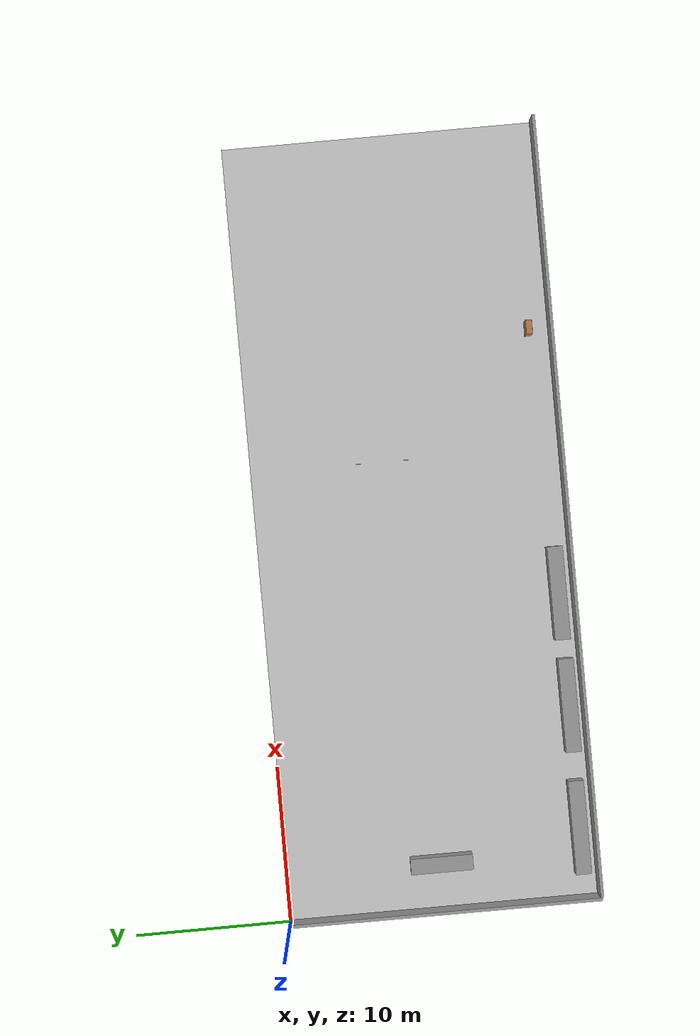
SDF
<sdf version="1.7">
 <world name="default">
  <light name="sun" type="directional">
   <pose>0 0 10 0 -0 0</pose>
   <diffuse>0.8 0.8 0.8 1</diffuse>
   <specular>0.2 0.2 0.2 1</specular>
   <attenuation>
    <range>1000</range>
    <constant>0.9</constant>
    <linear>0.01</linear>
    <quadratic>0.001</quadratic>
   </attenuation>
   <direction>-0.5 0.1 -0.9</direction>
   <spot><inner_angle>0</inner_angle><outer_angle>0</outer_angle><falloff>0</falloff></spot>
  </light>
  <gravity>0 0 -9.8</gravity>
  <magnetic_field>6e-06 2.3e-05 -4.2e-05</magnetic_field>
  <atmosphere type="adiabatic"/>
  <physics type="ode">
   <max_step_size>0.005</max_step_size>
   <real_time_factor>1</real_time_factor>
   <real_time_update_rate>200</real_time_update_rate>
   <ode><solver><type>quick</type><iters>10</iters></solver></ode>
  </physics>
  <scene><ambient>0.4 0.4 0.4 1</ambient><background>0.7 0.7 0.7 1</background><shadows>0</shadows></scene>
  <audio><device>default</device></audio>
  <spherical_coordinates>
   <surface_model>EARTH_WGS84</surface_model>
   <latitude_deg>0</latitude_deg>
   <longitude_deg>0</longitude_deg>
   <elevation>0</elevation>
   <heading_deg>0</heading_deg>
  </spherical_coordinates>
  <model name="my_ground_plane">
   <static>1</static>
   <link name="link">
    <collision name="collision">
     <geometry><plane><normal>0 0 1</normal><size>20 50</size></plane></geometry>
     <surface><friction><ode><mu>100</mu><mu2>50</mu2></ode></friction></surface>
    </collision>
    <visual name="visual">
     <cast_shadows>0</cast_shadows>
     <geometry><plane><normal>0 0 1</normal><size>20 50</size></plane></geometry>
     <material>
      <script>
       <uri>model://my_ground_plane/materials/scripts</uri>
       <uri>model://my_ground_plane/materials/textures/</uri>
       <name>MyGroundPlane/Image</name>
      </script>
     </material>
    </visual>
   </link>
   <pose>25 -10 0 0 -0 1.57</pose>
  </model>
  <model name="grey_wall">
   <static>1</static>
   <link name="link">
    <pose>0 0 1.4 0 -0 0</pose>
    <collision name="collision"><geometry><box><size>20 0.2 1.5</size></box></geometry></collision>
    <visual name="visual">
     <cast_shadows>0</cast_shadows>
     <geometry><box><size>20 0.2 1.5</size></box></geometry>
     <material>
      <script>
       <uri>model://grey_wall/materials/scripts</uri>
       <uri>model://grey_wall/materials/textures</uri>
       <name>vrc/grey_wall</name>
      </script>
     </material>
    </visual>
   </link>
   <pose>0 -10 -0.65 0 -0 1.57</pose>
  </model>
  <model name="grey_wall_0">
   <static>1</static>
   <link name="link">
    <pose>0 0 1.4 0 -0 1.57</pose>
    <collision name="collision"><geometry><box><size>50 0.2 1.5</size></box></geometry></collision>
    <visual name="visual">
     <cast_shadows>0</cast_shadows>
     <geometry><box><size>50 0.2 1.5</size></box></geometry>
     <material>
      <script>
       <uri>model://grey_wall/materials/scripts</uri>
       <uri>model://grey_wall/materials/textures</uri>
       <name>vrc/grey_wall</name>
      </script>
     </material>
    </visual>
   </link>
   <pose>25.1 -20 -0.65 0 -0 1.57</pose>
  </model>
  <model name="unit_box">
   <pose>3 -9.99989 0.499253 -0 -0.000373 1.57062</pose>
   <link name="link">
    <inertial>
     <mass>1</mass>
     <inertia>
      <ixx>0.166667</ixx>
      <ixy>0</ixy>
      <ixz>0</ixz>
      <iyy>0.166667</iyy>
      <iyz>0</iyz>
      <izz>0.166667</izz>
     </inertia>
    </inertial>
    <collision name="collision"><geometry><box><size>4 1 1</size></box></geometry></collision>
    <visual name="visual">
     <geometry><box><size>4 1 1</size></box></geometry>
     <material>
      <script><name>Gazebo/Grey</name><uri>file://media/materials/scripts/gazebo.material</uri></script>
     </material>
    </visual>
   </link>
  </model>
  <model name="unit_box_0_clone">
   <pose>19.6233 -19 0.495179 0 -0.001608 -0.000125</pose>
   <link name="link">
    <inertial>
     <mass>1</mass>
     <inertia>
      <ixx>0.166667</ixx>
      <ixy>0</ixy>
      <ixz>0</ixz>
      <iyy>0.166667</iyy>
      <iyz>0</iyz>
      <izz>0.166667</izz>
     </inertia>
    </inertial>
    <collision name="collision"><geometry><box><size>6 1 1</size></box></geometry></collision>
    <visual name="visual">
     <geometry><box><size>6 1 1</size></box></geometry>
     <material>
      <script><name>Gazebo/Grey</name><uri>file://media/materials/scripts/gazebo.material</uri></script>
     </material>
    </visual>
   </link>
  </model>
  <model name="unit_box_0_clone_0">
   <pose>4.56522 -19 0.495179 0 -0.001608 -0.000125</pose>
   <link name="link">
    <inertial>
     <mass>1</mass>
     <inertia>
      <ixx>0.166667</ixx>
      <ixy>0</ixy>
      <ixz>0</ixz>
      <iyy>0.166667</iyy>
      <iyz>0</iyz>
      <izz>0.166667</izz>
     </inertia>
    </inertial>
    <collision name="collision"><geometry><box><size>6 1 1</size></box></geometry></collision>
    <visual name="visual">
     <geometry><box><size>6 1 1</size></box></geometry>
     <material>
      <script><name>Gazebo/Grey</name><uri>file://media/materials/scripts/gazebo.material</uri></script>
     </material>
    </visual>
   </link>
  </model>
  <model name="unit_box_0_clone_0_clone">
   <pose>12.4058 -19.0529 0.495179 0 -0.001608 -0.000125</pose>
   <link name="link">
    <inertial>
     <mass>1</mass>
     <inertia>
      <ixx>0.166667</ixx>
      <ixy>0</ixy>
      <ixz>0</ixz>
      <iyy>0.166667</iyy>
      <iyz>0</iyz>
      <izz>0.166667</izz>
     </inertia>
    </inertial>
    <collision name="collision"><geometry><box><size>6 1 1</size></box></geometry></collision>
    <visual name="visual">
     <geometry><box><size>6 1 1</size></box></geometry>
     <material>
      <script><name>Gazebo/Grey</name><uri>file://media/materials/scripts/gazebo.material</uri></script>
     </material>
    </visual>
   </link>
  </model>
  <model name="bookshelf">
   <static>1</static>
   <link name="link">
    <inertial><mass>1</mass></inertial>
    <collision name="back">
     <pose>0 0.005 0.6 0 -0 0</pose>
     <geometry><box><size>0.9 0.01 1.2</size></box></geometry>
    </collision>
    <visual name="visual1">
     <pose>0 0.005 0.6 0 -0 0</pose>
     <geometry><box><size>0.9 0.01 1.2</size></box></geometry>
     <material>
      <script><uri>file://media/materials/scripts/gazebo.material</uri><name>Gazebo/Wood</name></script>
     </material>
    </visual>
    <collision name="left_side">
     <pose>0.45 -0.195 0.6 0 -0 0</pose>
     <geometry><box><size>0.02 0.4 1.2</size></box></geometry>
    </collision>
    <visual name="visual2">
     <pose>0.45 -0.195 0.6 0 -0 0</pose>
     <geometry><box><size>0.02 0.4 1.2</size></box></geometry>
     <material>
      <script><uri>file://media/materials/scripts/gazebo.material</uri><name>Gazebo/Wood</name></script>
     </material>
    </visual>
    <collision name="right_side">
     <pose>-0.45 -0.195 0.6 0 -0 0</pose>
     <geometry><box><size>0.02 0.4 1.2</size></box></geometry>
    </collision>
    <visual name="visual3">
     <pose>-0.45 -0.195 0.6 0 -0 0</pose>
     <geometry><box><size>0.02 0.4 1.2</size></box></geometry>
     <material>
      <script><uri>file://media/materials/scripts/gazebo.material</uri><name>Gazebo/Wood</name></script>
     </material>
    </visual>
    <collision name="bottom">
     <pose>0 -0.195 0.03 0 -0 0</pose>
     <geometry><box><size>0.88 0.4 0.06</size></box></geometry>
    </collision>
    <visual name="visual4">
     <pose>0 -0.195 0.03 0 -0 0</pose>
     <geometry><box><size>0.88 0.4 0.06</size></box></geometry>
     <material>
      <script><uri>file://media/materials/scripts/gazebo.material</uri><name>Gazebo/Wood</name></script>
     </material>
    </visual>
    <collision name="top">
     <pose>0 -0.195 1.19 0 -0 0</pose>
     <geometry><box><size>0.88 0.4 0.02</size></box></geometry>
    </collision>
    <visual name="visual5">
     <pose>0 -0.195 1.19 0 -0 0</pose>
     <geometry><box><size>0.88 0.4 0.02</size></box></geometry>
     <material>
      <script><uri>file://media/materials/scripts/gazebo.material</uri><name>Gazebo/Wood</name></script>
     </material>
    </visual>
    <collision name="low_shelf">
     <pose>0 -0.195 0.43 0 -0 0</pose>
     <geometry><box><size>0.88 0.4 0.02</size></box></geometry>
    </collision>
    <visual name="visual6">
     <pose>0 -0.195 0.43 0 -0 0</pose>
     <geometry><box><size>0.88 0.4 0.02</size></box></geometry>
     <material>
      <script><uri>file://media/materials/scripts/gazebo.material</uri><name>Gazebo/Wood</name></script>
     </material>
    </visual>
    <collision name="high_shelf">
     <pose>0 -0.195 0.8 0 -0 0</pose>
     <geometry><box><size>0.88 0.4 0.02</size></box></geometry>
    </collision>
    <visual name="visual7">
     <pose>0 -0.195 0.8 0 -0 0</pose>
     <geometry><box><size>0.88 0.4 0.02</size></box></geometry>
     <material>
      <script><uri>file://media/materials/scripts/gazebo.material</uri><name>Gazebo/Wood</name></script>
     </material>
    </visual>
   </link>
   <pose>36.7182 -18.8016 0 0 -0 3.14</pose>
  </model>
  <model name="Apriltag36_11_00000">
   <link name="main">
    <visual name="main_Visual">
     <geometry><box><size>0.5 0.5 0.01</size></box></geometry>
     <material>
      <script>
       <uri>model://Apriltag36_11_00000/materials/scripts</uri>
       <uri>model://Apriltag36_11_00000/materials/textures</uri>
       <name>Apriltag36_11_00000</name>
      </script>
     </material>
    </visual>
   </link>
   <static>1</static>
   <pose>29 -7 0.3 0 1.57 0</pose>
  </model>
  <model name="Apriltag36_11_00000_clone">
   <link name="main">
    <visual name="main_Visual">
     <geometry><box><size>0.5 0.5 0.01</size></box></geometry>
     <material>
      <script>
       <uri>model://Apriltag36_11_00000/materials/scripts</uri>
       <uri>model://Apriltag36_11_00000/materials/textures</uri>
       <name>Apriltag36_11_00000</name>
      </script>
     </material>
    </visual>
   </link>
   <static>1</static>
   <pose>29 -10 0.3 0 1.57 0</pose>
  </model>
 </world>
</sdf>
